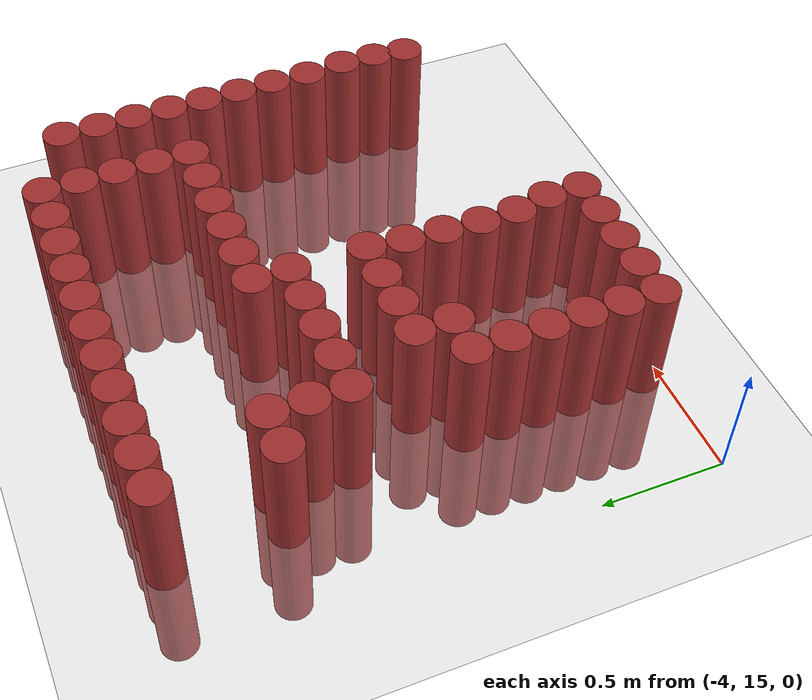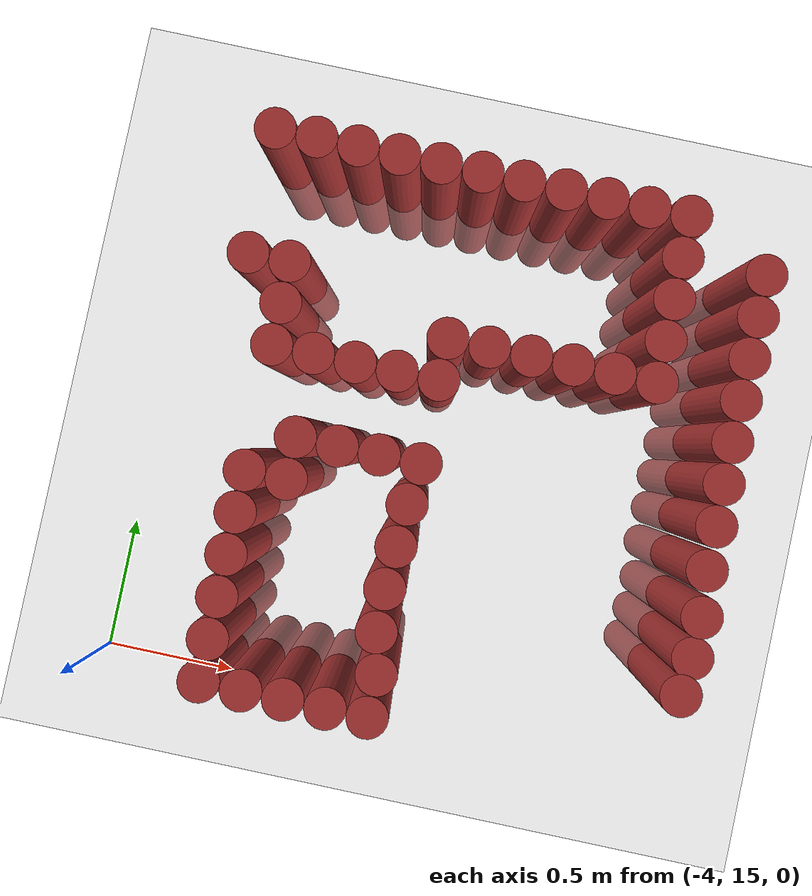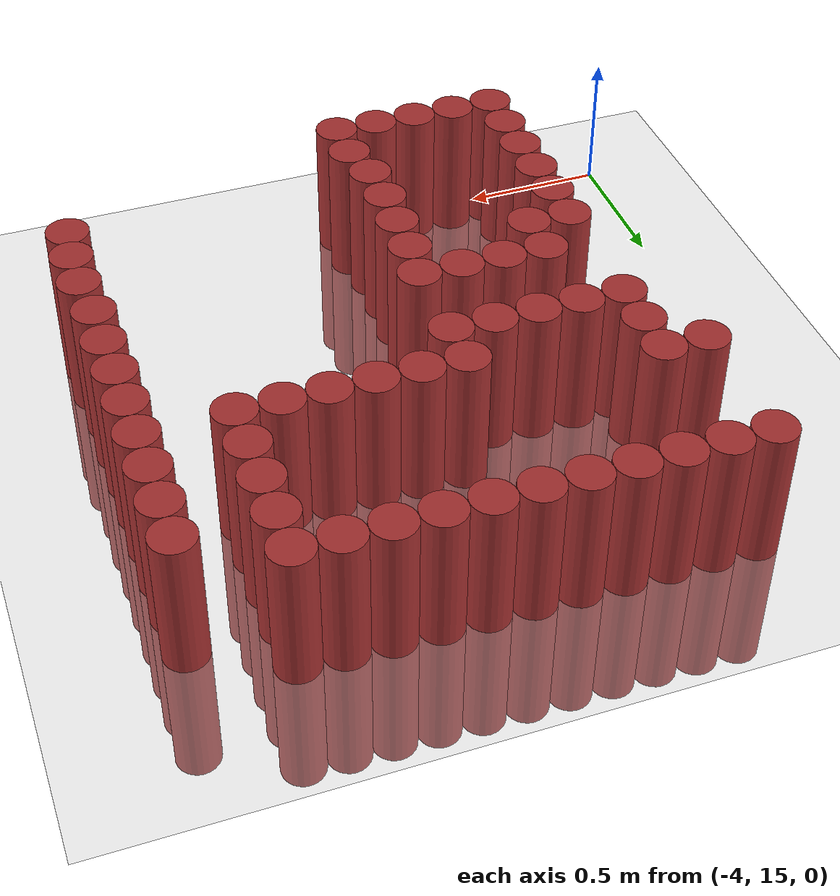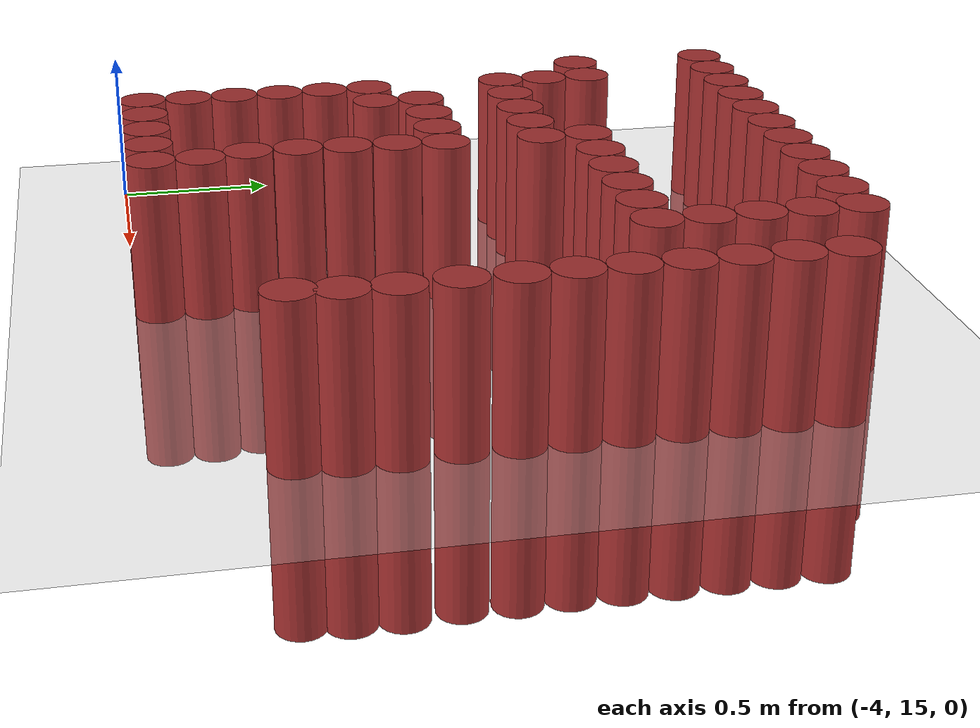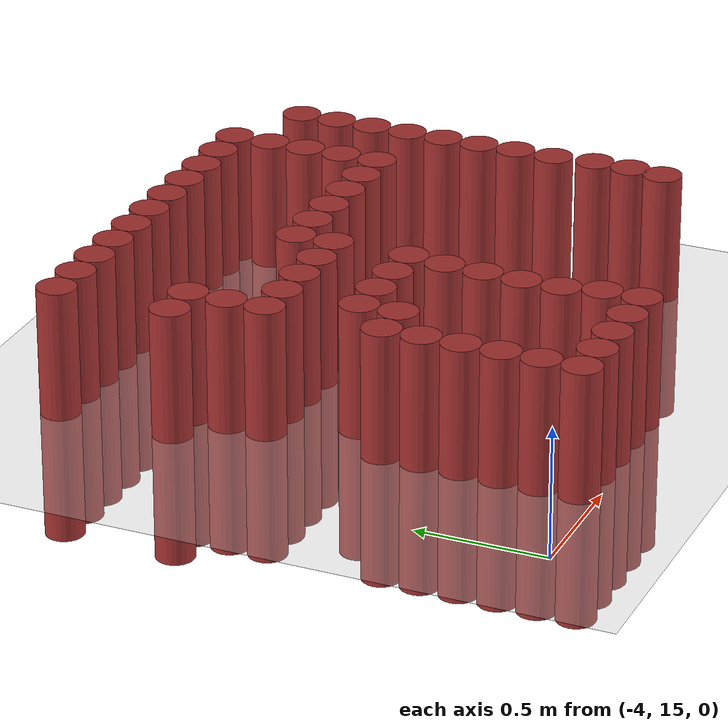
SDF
<sdf version="1.6">
 <world name="default">
  <model name="ground_plane">
   <static>1</static>
   <link name="link">
    <collision name="collision">
     <geometry><plane><normal>0 0 1</normal><size>100 100</size></plane></geometry>
     <surface><friction><ode><mu>100</mu><mu2>50</mu2></ode></friction></surface>
    </collision>
    <visual name="visual">
     <cast_shadows>0</cast_shadows>
     <geometry><plane><normal>0 0 1</normal><size>100 100</size></plane></geometry>
     <material>
      <script><uri>file://media/materials/scripts/gazebo.material</uri><name>Gazebo/Grey</name></script>
     </material>
    </visual>
   </link>
  </model>
  <model name="unit_cylinder_1180">
   <static>1</static>
   <pose>-3.675 16.575 0 0 -0 0</pose>
   <link name="link">
    <inertial>
     <mass>1</mass>
     <inertia><ixx>0.145833</ixx><ixy>0</ixy><ixz>0</ixz><iyy>0.145833</iyy><iyz>0</iyz><izz>0.125</izz></inertia>
    </inertial>
    <collision name="collision">
     <geometry><cylinder><radius>0.075</radius><length>1</length></cylinder></geometry>
    </collision>
    <visual name="visual">
     <geometry><cylinder><radius>0.075</radius><length>1</length></cylinder></geometry>
     <material><ambient>0.648 0.192 0.192 1</ambient><diffuse>0.648 0.192 0.192 1</diffuse></material>
     <material>
      <script><name>Gazebo/Grey</name><uri>file://media/materials/scripts/gazebo.material</uri></script>
     </material>
    </visual>
   </link>
  </model>
  <model name="unit_cylinder_1181">
   <static>1</static>
   <pose>-3.675 17.025 0 0 -0 0</pose>
   <link name="link">
    <inertial>
     <mass>1</mass>
     <inertia><ixx>0.145833</ixx><ixy>0</ixy><ixz>0</ixz><iyy>0.145833</iyy><iyz>0</iyz><izz>0.125</izz></inertia>
    </inertial>
    <collision name="collision">
     <geometry><cylinder><radius>0.075</radius><length>1</length></cylinder></geometry>
    </collision>
    <visual name="visual">
     <geometry><cylinder><radius>0.075</radius><length>1</length></cylinder></geometry>
     <material><ambient>0.648 0.192 0.192 1</ambient><diffuse>0.648 0.192 0.192 1</diffuse></material>
     <material>
      <script><name>Gazebo/Grey</name><uri>file://media/materials/scripts/gazebo.material</uri></script>
     </material>
    </visual>
   </link>
  </model>
  <model name="unit_cylinder_1197">
   <static>1</static>
   <pose>-3.525 15.075 0 0 -0 0</pose>
   <link name="link">
    <inertial>
     <mass>1</mass>
     <inertia><ixx>0.145833</ixx><ixy>0</ixy><ixz>0</ixz><iyy>0.145833</iyy><iyz>0</iyz><izz>0.125</izz></inertia>
    </inertial>
    <collision name="collision">
     <geometry><cylinder><radius>0.075</radius><length>1</length></cylinder></geometry>
    </collision>
    <visual name="visual">
     <geometry><cylinder><radius>0.075</radius><length>1</length></cylinder></geometry>
     <material><ambient>0.648 0.192 0.192 1</ambient><diffuse>0.648 0.192 0.192 1</diffuse></material>
     <material>
      <script><name>Gazebo/Grey</name><uri>file://media/materials/scripts/gazebo.material</uri></script>
     </material>
    </visual>
   </link>
  </model>
  <model name="unit_cylinder_1198">
   <static>1</static>
   <pose>-3.525 15.225 0 0 -0 0</pose>
   <link name="link">
    <inertial>
     <mass>1</mass>
     <inertia><ixx>0.145833</ixx><ixy>0</ixy><ixz>0</ixz><iyy>0.145833</iyy><iyz>0</iyz><izz>0.125</izz></inertia>
    </inertial>
    <collision name="collision">
     <geometry><cylinder><radius>0.075</radius><length>1</length></cylinder></geometry>
    </collision>
    <visual name="visual">
     <geometry><cylinder><radius>0.075</radius><length>1</length></cylinder></geometry>
     <material><ambient>0.648 0.192 0.192 1</ambient><diffuse>0.648 0.192 0.192 1</diffuse></material>
     <material>
      <script><name>Gazebo/Grey</name><uri>file://media/materials/scripts/gazebo.material</uri></script>
     </material>
    </visual>
   </link>
  </model>
  <model name="unit_cylinder_1199">
   <static>1</static>
   <pose>-3.525 15.375 0 0 -0 0</pose>
   <link name="link">
    <inertial>
     <mass>1</mass>
     <inertia><ixx>0.145833</ixx><ixy>0</ixy><ixz>0</ixz><iyy>0.145833</iyy><iyz>0</iyz><izz>0.125</izz></inertia>
    </inertial>
    <collision name="collision">
     <geometry><cylinder><radius>0.075</radius><length>1</length></cylinder></geometry>
    </collision>
    <visual name="visual">
     <geometry><cylinder><radius>0.075</radius><length>1</length></cylinder></geometry>
     <material><ambient>0.648 0.192 0.192 1</ambient><diffuse>0.648 0.192 0.192 1</diffuse></material>
     <material>
      <script><name>Gazebo/Grey</name><uri>file://media/materials/scripts/gazebo.material</uri></script>
     </material>
    </visual>
   </link>
  </model>
  <model name="unit_cylinder_1200">
   <static>1</static>
   <pose>-3.525 15.525 0 0 -0 0</pose>
   <link name="link">
    <inertial>
     <mass>1</mass>
     <inertia><ixx>0.145833</ixx><ixy>0</ixy><ixz>0</ixz><iyy>0.145833</iyy><iyz>0</iyz><izz>0.125</izz></inertia>
    </inertial>
    <collision name="collision">
     <geometry><cylinder><radius>0.075</radius><length>1</length></cylinder></geometry>
    </collision>
    <visual name="visual">
     <geometry><cylinder><radius>0.075</radius><length>1</length></cylinder></geometry>
     <material><ambient>0.648 0.192 0.192 1</ambient><diffuse>0.648 0.192 0.192 1</diffuse></material>
     <material>
      <script><name>Gazebo/Grey</name><uri>file://media/materials/scripts/gazebo.material</uri></script>
     </material>
    </visual>
   </link>
  </model>
  <model name="unit_cylinder_1201">
   <static>1</static>
   <pose>-3.525 15.675 0 0 -0 0</pose>
   <link name="link">
    <inertial>
     <mass>1</mass>
     <inertia><ixx>0.145833</ixx><ixy>0</ixy><ixz>0</ixz><iyy>0.145833</iyy><iyz>0</iyz><izz>0.125</izz></inertia>
    </inertial>
    <collision name="collision">
     <geometry><cylinder><radius>0.075</radius><length>1</length></cylinder></geometry>
    </collision>
    <visual name="visual">
     <geometry><cylinder><radius>0.075</radius><length>1</length></cylinder></geometry>
     <material><ambient>0.648 0.192 0.192 1</ambient><diffuse>0.648 0.192 0.192 1</diffuse></material>
     <material>
      <script><name>Gazebo/Grey</name><uri>file://media/materials/scripts/gazebo.material</uri></script>
     </material>
    </visual>
   </link>
  </model>
  <model name="unit_cylinder_1202">
   <static>1</static>
   <pose>-3.525 15.825 0 0 -0 0</pose>
   <link name="link">
    <inertial>
     <mass>1</mass>
     <inertia><ixx>0.145833</ixx><ixy>0</ixy><ixz>0</ixz><iyy>0.145833</iyy><iyz>0</iyz><izz>0.125</izz></inertia>
    </inertial>
    <collision name="collision">
     <geometry><cylinder><radius>0.075</radius><length>1</length></cylinder></geometry>
    </collision>
    <visual name="visual">
     <geometry><cylinder><radius>0.075</radius><length>1</length></cylinder></geometry>
     <material><ambient>0.648 0.192 0.192 1</ambient><diffuse>0.648 0.192 0.192 1</diffuse></material>
     <material>
      <script><name>Gazebo/Grey</name><uri>file://media/materials/scripts/gazebo.material</uri></script>
     </material>
    </visual>
   </link>
  </model>
  <model name="unit_cylinder_1203">
   <static>1</static>
   <pose>-3.525 16.275 0 0 -0 0</pose>
   <link name="link">
    <inertial>
     <mass>1</mass>
     <inertia><ixx>0.145833</ixx><ixy>0</ixy><ixz>0</ixz><iyy>0.145833</iyy><iyz>0</iyz><izz>0.125</izz></inertia>
    </inertial>
    <collision name="collision">
     <geometry><cylinder><radius>0.075</radius><length>1</length></cylinder></geometry>
    </collision>
    <visual name="visual">
     <geometry><cylinder><radius>0.075</radius><length>1</length></cylinder></geometry>
     <material><ambient>0.648 0.192 0.192 1</ambient><diffuse>0.648 0.192 0.192 1</diffuse></material>
     <material>
      <script><name>Gazebo/Grey</name><uri>file://media/materials/scripts/gazebo.material</uri></script>
     </material>
    </visual>
   </link>
  </model>
  <model name="unit_cylinder_1204">
   <static>1</static>
   <pose>-3.525 16.425 0 0 -0 0</pose>
   <link name="link">
    <inertial>
     <mass>1</mass>
     <inertia><ixx>0.145833</ixx><ixy>0</ixy><ixz>0</ixz><iyy>0.145833</iyy><iyz>0</iyz><izz>0.125</izz></inertia>
    </inertial>
    <collision name="collision">
     <geometry><cylinder><radius>0.075</radius><length>1</length></cylinder></geometry>
    </collision>
    <visual name="visual">
     <geometry><cylinder><radius>0.075</radius><length>1</length></cylinder></geometry>
     <material><ambient>0.648 0.192 0.192 1</ambient><diffuse>0.648 0.192 0.192 1</diffuse></material>
     <material>
      <script><name>Gazebo/Grey</name><uri>file://media/materials/scripts/gazebo.material</uri></script>
     </material>
    </visual>
   </link>
  </model>
  <model name="unit_cylinder_1205">
   <static>1</static>
   <pose>-3.525 16.575 0 0 -0 0</pose>
   <link name="link">
    <inertial>
     <mass>1</mass>
     <inertia><ixx>0.145833</ixx><ixy>0</ixy><ixz>0</ixz><iyy>0.145833</iyy><iyz>0</iyz><izz>0.125</izz></inertia>
    </inertial>
    <collision name="collision">
     <geometry><cylinder><radius>0.075</radius><length>1</length></cylinder></geometry>
    </collision>
    <visual name="visual">
     <geometry><cylinder><radius>0.075</radius><length>1</length></cylinder></geometry>
     <material><ambient>0.648 0.192 0.192 1</ambient><diffuse>0.648 0.192 0.192 1</diffuse></material>
     <material>
      <script><name>Gazebo/Grey</name><uri>file://media/materials/scripts/gazebo.material</uri></script>
     </material>
    </visual>
   </link>
  </model>
  <model name="unit_cylinder_1206">
   <static>1</static>
   <pose>-3.525 17.025 0 0 -0 0</pose>
   <link name="link">
    <inertial>
     <mass>1</mass>
     <inertia><ixx>0.145833</ixx><ixy>0</ixy><ixz>0</ixz><iyy>0.145833</iyy><iyz>0</iyz><izz>0.125</izz></inertia>
    </inertial>
    <collision name="collision">
     <geometry><cylinder><radius>0.075</radius><length>1</length></cylinder></geometry>
    </collision>
    <visual name="visual">
     <geometry><cylinder><radius>0.075</radius><length>1</length></cylinder></geometry>
     <material><ambient>0.648 0.192 0.192 1</ambient><diffuse>0.648 0.192 0.192 1</diffuse></material>
     <material>
      <script><name>Gazebo/Grey</name><uri>file://media/materials/scripts/gazebo.material</uri></script>
     </material>
    </visual>
   </link>
  </model>
  <model name="unit_cylinder_1223">
   <static>1</static>
   <pose>-3.375 15.075 0 0 -0 0</pose>
   <link name="link">
    <inertial>
     <mass>1</mass>
     <inertia><ixx>0.145833</ixx><ixy>0</ixy><ixz>0</ixz><iyy>0.145833</iyy><iyz>0</iyz><izz>0.125</izz></inertia>
    </inertial>
    <collision name="collision">
     <geometry><cylinder><radius>0.075</radius><length>1</length></cylinder></geometry>
    </collision>
    <visual name="visual">
     <geometry><cylinder><radius>0.075</radius><length>1</length></cylinder></geometry>
     <material><ambient>0.648 0.192 0.192 1</ambient><diffuse>0.648 0.192 0.192 1</diffuse></material>
     <material>
      <script><name>Gazebo/Grey</name><uri>file://media/materials/scripts/gazebo.material</uri></script>
     </material>
    </visual>
   </link>
  </model>
  <model name="unit_cylinder_1224">
   <static>1</static>
   <pose>-3.375 15.825 0 0 -0 0</pose>
   <link name="link">
    <inertial>
     <mass>1</mass>
     <inertia><ixx>0.145833</ixx><ixy>0</ixy><ixz>0</ixz><iyy>0.145833</iyy><iyz>0</iyz><izz>0.125</izz></inertia>
    </inertial>
    <collision name="collision">
     <geometry><cylinder><radius>0.075</radius><length>1</length></cylinder></geometry>
    </collision>
    <visual name="visual">
     <geometry><cylinder><radius>0.075</radius><length>1</length></cylinder></geometry>
     <material><ambient>0.648 0.192 0.192 1</ambient><diffuse>0.648 0.192 0.192 1</diffuse></material>
     <material>
      <script><name>Gazebo/Grey</name><uri>file://media/materials/scripts/gazebo.material</uri></script>
     </material>
    </visual>
   </link>
  </model>
  <model name="unit_cylinder_1225">
   <static>1</static>
   <pose>-3.375 15.975 0 0 -0 0</pose>
   <link name="link">
    <inertial>
     <mass>1</mass>
     <inertia><ixx>0.145833</ixx><ixy>0</ixy><ixz>0</ixz><iyy>0.145833</iyy><iyz>0</iyz><izz>0.125</izz></inertia>
    </inertial>
    <collision name="collision">
     <geometry><cylinder><radius>0.075</radius><length>1</length></cylinder></geometry>
    </collision>
    <visual name="visual">
     <geometry><cylinder><radius>0.075</radius><length>1</length></cylinder></geometry>
     <material><ambient>0.648 0.192 0.192 1</ambient><diffuse>0.648 0.192 0.192 1</diffuse></material>
     <material>
      <script><name>Gazebo/Grey</name><uri>file://media/materials/scripts/gazebo.material</uri></script>
     </material>
    </visual>
   </link>
  </model>
  <model name="unit_cylinder_1226">
   <static>1</static>
   <pose>-3.375 16.275 0 0 -0 0</pose>
   <link name="link">
    <inertial>
     <mass>1</mass>
     <inertia><ixx>0.145833</ixx><ixy>0</ixy><ixz>0</ixz><iyy>0.145833</iyy><iyz>0</iyz><izz>0.125</izz></inertia>
    </inertial>
    <collision name="collision">
     <geometry><cylinder><radius>0.075</radius><length>1</length></cylinder></geometry>
    </collision>
    <visual name="visual">
     <geometry><cylinder><radius>0.075</radius><length>1</length></cylinder></geometry>
     <material><ambient>0.648 0.192 0.192 1</ambient><diffuse>0.648 0.192 0.192 1</diffuse></material>
     <material>
      <script><name>Gazebo/Grey</name><uri>file://media/materials/scripts/gazebo.material</uri></script>
     </material>
    </visual>
   </link>
  </model>
  <model name="unit_cylinder_1227">
   <static>1</static>
   <pose>-3.375 17.025 0 0 -0 0</pose>
   <link name="link">
    <inertial>
     <mass>1</mass>
     <inertia><ixx>0.145833</ixx><ixy>0</ixy><ixz>0</ixz><iyy>0.145833</iyy><iyz>0</iyz><izz>0.125</izz></inertia>
    </inertial>
    <collision name="collision">
     <geometry><cylinder><radius>0.075</radius><length>1</length></cylinder></geometry>
    </collision>
    <visual name="visual">
     <geometry><cylinder><radius>0.075</radius><length>1</length></cylinder></geometry>
     <material><ambient>0.648 0.192 0.192 1</ambient><diffuse>0.648 0.192 0.192 1</diffuse></material>
     <material>
      <script><name>Gazebo/Grey</name><uri>file://media/materials/scripts/gazebo.material</uri></script>
     </material>
    </visual>
   </link>
  </model>
  <model name="unit_cylinder_1242">
   <static>1</static>
   <pose>-3.225 15.075 0 0 -0 0</pose>
   <link name="link">
    <inertial>
     <mass>1</mass>
     <inertia><ixx>0.145833</ixx><ixy>0</ixy><ixz>0</ixz><iyy>0.145833</iyy><iyz>0</iyz><izz>0.125</izz></inertia>
    </inertial>
    <collision name="collision">
     <geometry><cylinder><radius>0.075</radius><length>1</length></cylinder></geometry>
    </collision>
    <visual name="visual">
     <geometry><cylinder><radius>0.075</radius><length>1</length></cylinder></geometry>
     <material><ambient>0.648 0.192 0.192 1</ambient><diffuse>0.648 0.192 0.192 1</diffuse></material>
     <material>
      <script><name>Gazebo/Grey</name><uri>file://media/materials/scripts/gazebo.material</uri></script>
     </material>
    </visual>
   </link>
  </model>
  <model name="unit_cylinder_1243">
   <static>1</static>
   <pose>-3.225 15.975 0 0 -0 0</pose>
   <link name="link">
    <inertial>
     <mass>1</mass>
     <inertia><ixx>0.145833</ixx><ixy>0</ixy><ixz>0</ixz><iyy>0.145833</iyy><iyz>0</iyz><izz>0.125</izz></inertia>
    </inertial>
    <collision name="collision">
     <geometry><cylinder><radius>0.075</radius><length>1</length></cylinder></geometry>
    </collision>
    <visual name="visual">
     <geometry><cylinder><radius>0.075</radius><length>1</length></cylinder></geometry>
     <material><ambient>0.648 0.192 0.192 1</ambient><diffuse>0.648 0.192 0.192 1</diffuse></material>
     <material>
      <script><name>Gazebo/Grey</name><uri>file://media/materials/scripts/gazebo.material</uri></script>
     </material>
    </visual>
   </link>
  </model>
  <model name="unit_cylinder_1244">
   <static>1</static>
   <pose>-3.225 16.275 0 0 -0 0</pose>
   <link name="link">
    <inertial>
     <mass>1</mass>
     <inertia><ixx>0.145833</ixx><ixy>0</ixy><ixz>0</ixz><iyy>0.145833</iyy><iyz>0</iyz><izz>0.125</izz></inertia>
    </inertial>
    <collision name="collision">
     <geometry><cylinder><radius>0.075</radius><length>1</length></cylinder></geometry>
    </collision>
    <visual name="visual">
     <geometry><cylinder><radius>0.075</radius><length>1</length></cylinder></geometry>
     <material><ambient>0.648 0.192 0.192 1</ambient><diffuse>0.648 0.192 0.192 1</diffuse></material>
     <material>
      <script><name>Gazebo/Grey</name><uri>file://media/materials/scripts/gazebo.material</uri></script>
     </material>
    </visual>
   </link>
  </model>
  <model name="unit_cylinder_1245">
   <static>1</static>
   <pose>-3.225 17.025 0 0 -0 0</pose>
   <link name="link">
    <inertial>
     <mass>1</mass>
     <inertia><ixx>0.145833</ixx><ixy>0</ixy><ixz>0</ixz><iyy>0.145833</iyy><iyz>0</iyz><izz>0.125</izz></inertia>
    </inertial>
    <collision name="collision">
     <geometry><cylinder><radius>0.075</radius><length>1</length></cylinder></geometry>
    </collision>
    <visual name="visual">
     <geometry><cylinder><radius>0.075</radius><length>1</length></cylinder></geometry>
     <material><ambient>0.648 0.192 0.192 1</ambient><diffuse>0.648 0.192 0.192 1</diffuse></material>
     <material>
      <script><name>Gazebo/Grey</name><uri>file://media/materials/scripts/gazebo.material</uri></script>
     </material>
    </visual>
   </link>
  </model>
  <model name="unit_cylinder_1255">
   <static>1</static>
   <pose>-3.075 15.075 0 0 -0 0</pose>
   <link name="link">
    <inertial>
     <mass>1</mass>
     <inertia><ixx>0.145833</ixx><ixy>0</ixy><ixz>0</ixz><iyy>0.145833</iyy><iyz>0</iyz><izz>0.125</izz></inertia>
    </inertial>
    <collision name="collision">
     <geometry><cylinder><radius>0.075</radius><length>1</length></cylinder></geometry>
    </collision>
    <visual name="visual">
     <geometry><cylinder><radius>0.075</radius><length>1</length></cylinder></geometry>
     <material><ambient>0.648 0.192 0.192 1</ambient><diffuse>0.648 0.192 0.192 1</diffuse></material>
     <material>
      <script><name>Gazebo/Grey</name><uri>file://media/materials/scripts/gazebo.material</uri></script>
     </material>
    </visual>
   </link>
  </model>
  <model name="unit_cylinder_1256">
   <static>1</static>
   <pose>-3.075 15.975 0 0 -0 0</pose>
   <link name="link">
    <inertial>
     <mass>1</mass>
     <inertia><ixx>0.145833</ixx><ixy>0</ixy><ixz>0</ixz><iyy>0.145833</iyy><iyz>0</iyz><izz>0.125</izz></inertia>
    </inertial>
    <collision name="collision">
     <geometry><cylinder><radius>0.075</radius><length>1</length></cylinder></geometry>
    </collision>
    <visual name="visual">
     <geometry><cylinder><radius>0.075</radius><length>1</length></cylinder></geometry>
     <material><ambient>0.648 0.192 0.192 1</ambient><diffuse>0.648 0.192 0.192 1</diffuse></material>
     <material>
      <script><name>Gazebo/Grey</name><uri>file://media/materials/scripts/gazebo.material</uri></script>
     </material>
    </visual>
   </link>
  </model>
  <model name="unit_cylinder_1257">
   <static>1</static>
   <pose>-3.075 16.275 0 0 -0 0</pose>
   <link name="link">
    <inertial>
     <mass>1</mass>
     <inertia><ixx>0.145833</ixx><ixy>0</ixy><ixz>0</ixz><iyy>0.145833</iyy><iyz>0</iyz><izz>0.125</izz></inertia>
    </inertial>
    <collision name="collision">
     <geometry><cylinder><radius>0.075</radius><length>1</length></cylinder></geometry>
    </collision>
    <visual name="visual">
     <geometry><cylinder><radius>0.075</radius><length>1</length></cylinder></geometry>
     <material><ambient>0.648 0.192 0.192 1</ambient><diffuse>0.648 0.192 0.192 1</diffuse></material>
     <material>
      <script><name>Gazebo/Grey</name><uri>file://media/materials/scripts/gazebo.material</uri></script>
     </material>
    </visual>
   </link>
  </model>
  <model name="unit_cylinder_1258">
   <static>1</static>
   <pose>-3.075 17.025 0 0 -0 0</pose>
   <link name="link">
    <inertial>
     <mass>1</mass>
     <inertia><ixx>0.145833</ixx><ixy>0</ixy><ixz>0</ixz><iyy>0.145833</iyy><iyz>0</iyz><izz>0.125</izz></inertia>
    </inertial>
    <collision name="collision">
     <geometry><cylinder><radius>0.075</radius><length>1</length></cylinder></geometry>
    </collision>
    <visual name="visual">
     <geometry><cylinder><radius>0.075</radius><length>1</length></cylinder></geometry>
     <material><ambient>0.648 0.192 0.192 1</ambient><diffuse>0.648 0.192 0.192 1</diffuse></material>
     <material>
      <script><name>Gazebo/Grey</name><uri>file://media/materials/scripts/gazebo.material</uri></script>
     </material>
    </visual>
   </link>
  </model>
  <model name="unit_cylinder_1263">
   <static>1</static>
   <pose>-2.925 15.075 0 0 -0 0</pose>
   <link name="link">
    <inertial>
     <mass>1</mass>
     <inertia><ixx>0.145833</ixx><ixy>0</ixy><ixz>0</ixz><iyy>0.145833</iyy><iyz>0</iyz><izz>0.125</izz></inertia>
    </inertial>
    <collision name="collision">
     <geometry><cylinder><radius>0.075</radius><length>1</length></cylinder></geometry>
    </collision>
    <visual name="visual">
     <geometry><cylinder><radius>0.075</radius><length>1</length></cylinder></geometry>
     <material><ambient>0.648 0.192 0.192 1</ambient><diffuse>0.648 0.192 0.192 1</diffuse></material>
     <material>
      <script><name>Gazebo/Grey</name><uri>file://media/materials/scripts/gazebo.material</uri></script>
     </material>
    </visual>
   </link>
  </model>
  <model name="unit_cylinder_1264">
   <static>1</static>
   <pose>-2.925 15.225 0 0 -0 0</pose>
   <link name="link">
    <inertial>
     <mass>1</mass>
     <inertia><ixx>0.145833</ixx><ixy>0</ixy><ixz>0</ixz><iyy>0.145833</iyy><iyz>0</iyz><izz>0.125</izz></inertia>
    </inertial>
    <collision name="collision">
     <geometry><cylinder><radius>0.075</radius><length>1</length></cylinder></geometry>
    </collision>
    <visual name="visual">
     <geometry><cylinder><radius>0.075</radius><length>1</length></cylinder></geometry>
     <material><ambient>0.648 0.192 0.192 1</ambient><diffuse>0.648 0.192 0.192 1</diffuse></material>
     <material>
      <script><name>Gazebo/Grey</name><uri>file://media/materials/scripts/gazebo.material</uri></script>
     </material>
    </visual>
   </link>
  </model>
  <model name="unit_cylinder_1265">
   <static>1</static>
   <pose>-2.925 15.975 0 0 -0 0</pose>
   <link name="link">
    <inertial>
     <mass>1</mass>
     <inertia><ixx>0.145833</ixx><ixy>0</ixy><ixz>0</ixz><iyy>0.145833</iyy><iyz>0</iyz><izz>0.125</izz></inertia>
    </inertial>
    <collision name="collision">
     <geometry><cylinder><radius>0.075</radius><length>1</length></cylinder></geometry>
    </collision>
    <visual name="visual">
     <geometry><cylinder><radius>0.075</radius><length>1</length></cylinder></geometry>
     <material><ambient>0.648 0.192 0.192 1</ambient><diffuse>0.648 0.192 0.192 1</diffuse></material>
     <material>
      <script><name>Gazebo/Grey</name><uri>file://media/materials/scripts/gazebo.material</uri></script>
     </material>
    </visual>
   </link>
  </model>
  <model name="unit_cylinder_1266">
   <static>1</static>
   <pose>-2.925 16.275 0 0 -0 0</pose>
   <link name="link">
    <inertial>
     <mass>1</mass>
     <inertia><ixx>0.145833</ixx><ixy>0</ixy><ixz>0</ixz><iyy>0.145833</iyy><iyz>0</iyz><izz>0.125</izz></inertia>
    </inertial>
    <collision name="collision">
     <geometry><cylinder><radius>0.075</radius><length>1</length></cylinder></geometry>
    </collision>
    <visual name="visual">
     <geometry><cylinder><radius>0.075</radius><length>1</length></cylinder></geometry>
     <material><ambient>0.648 0.192 0.192 1</ambient><diffuse>0.648 0.192 0.192 1</diffuse></material>
     <material>
      <script><name>Gazebo/Grey</name><uri>file://media/materials/scripts/gazebo.material</uri></script>
     </material>
    </visual>
   </link>
  </model>
  <model name="unit_cylinder_1267">
   <static>1</static>
   <pose>-2.925 16.425 0 0 -0 0</pose>
   <link name="link">
    <inertial>
     <mass>1</mass>
     <inertia><ixx>0.145833</ixx><ixy>0</ixy><ixz>0</ixz><iyy>0.145833</iyy><iyz>0</iyz><izz>0.125</izz></inertia>
    </inertial>
    <collision name="collision">
     <geometry><cylinder><radius>0.075</radius><length>1</length></cylinder></geometry>
    </collision>
    <visual name="visual">
     <geometry><cylinder><radius>0.075</radius><length>1</length></cylinder></geometry>
     <material><ambient>0.648 0.192 0.192 1</ambient><diffuse>0.648 0.192 0.192 1</diffuse></material>
     <material>
      <script><name>Gazebo/Grey</name><uri>file://media/materials/scripts/gazebo.material</uri></script>
     </material>
    </visual>
   </link>
  </model>
  <model name="unit_cylinder_1268">
   <static>1</static>
   <pose>-2.925 17.025 0 0 -0 0</pose>
   <link name="link">
    <inertial>
     <mass>1</mass>
     <inertia><ixx>0.145833</ixx><ixy>0</ixy><ixz>0</ixz><iyy>0.145833</iyy><iyz>0</iyz><izz>0.125</izz></inertia>
    </inertial>
    <collision name="collision">
     <geometry><cylinder><radius>0.075</radius><length>1</length></cylinder></geometry>
    </collision>
    <visual name="visual">
     <geometry><cylinder><radius>0.075</radius><length>1</length></cylinder></geometry>
     <material><ambient>0.648 0.192 0.192 1</ambient><diffuse>0.648 0.192 0.192 1</diffuse></material>
     <material>
      <script><name>Gazebo/Grey</name><uri>file://media/materials/scripts/gazebo.material</uri></script>
     </material>
    </visual>
   </link>
  </model>
  <model name="unit_cylinder_1277">
   <static>1</static>
   <pose>-2.775 16.425 0 0 -0 0</pose>
   <link name="link">
    <inertial>
     <mass>1</mass>
     <inertia><ixx>0.145833</ixx><ixy>0</ixy><ixz>0</ixz><iyy>0.145833</iyy><iyz>0</iyz><izz>0.125</izz></inertia>
    </inertial>
    <collision name="collision">
     <geometry><cylinder><radius>0.075</radius><length>1</length></cylinder></geometry>
    </collision>
    <visual name="visual">
     <geometry><cylinder><radius>0.075</radius><length>1</length></cylinder></geometry>
     <material><ambient>0.648 0.192 0.192 1</ambient><diffuse>0.648 0.192 0.192 1</diffuse></material>
     <material>
      <script><name>Gazebo/Grey</name><uri>file://media/materials/scripts/gazebo.material</uri></script>
     </material>
    </visual>
   </link>
  </model>
  <model name="unit_cylinder_1278">
   <static>1</static>
   <pose>-2.775 17.025 0 0 -0 0</pose>
   <link name="link">
    <inertial>
     <mass>1</mass>
     <inertia><ixx>0.145833</ixx><ixy>0</ixy><ixz>0</ixz><iyy>0.145833</iyy><iyz>0</iyz><izz>0.125</izz></inertia>
    </inertial>
    <collision name="collision">
     <geometry><cylinder><radius>0.075</radius><length>1</length></cylinder></geometry>
    </collision>
    <visual name="visual">
     <geometry><cylinder><radius>0.075</radius><length>1</length></cylinder></geometry>
     <material><ambient>0.648 0.192 0.192 1</ambient><diffuse>0.648 0.192 0.192 1</diffuse></material>
     <material>
      <script><name>Gazebo/Grey</name><uri>file://media/materials/scripts/gazebo.material</uri></script>
     </material>
    </visual>
   </link>
  </model>
  <model name="unit_cylinder_1285">
   <static>1</static>
   <pose>-2.625 16.425 0 0 -0 0</pose>
   <link name="link">
    <inertial>
     <mass>1</mass>
     <inertia><ixx>0.145833</ixx><ixy>0</ixy><ixz>0</ixz><iyy>0.145833</iyy><iyz>0</iyz><izz>0.125</izz></inertia>
    </inertial>
    <collision name="collision">
     <geometry><cylinder><radius>0.075</radius><length>1</length></cylinder></geometry>
    </collision>
    <visual name="visual">
     <geometry><cylinder><radius>0.075</radius><length>1</length></cylinder></geometry>
     <material><ambient>0.648 0.192 0.192 1</ambient><diffuse>0.648 0.192 0.192 1</diffuse></material>
     <material>
      <script><name>Gazebo/Grey</name><uri>file://media/materials/scripts/gazebo.material</uri></script>
     </material>
    </visual>
   </link>
  </model>
  <model name="unit_cylinder_1286">
   <static>1</static>
   <pose>-2.625 17.025 0 0 -0 0</pose>
   <link name="link">
    <inertial>
     <mass>1</mass>
     <inertia><ixx>0.145833</ixx><ixy>0</ixy><ixz>0</ixz><iyy>0.145833</iyy><iyz>0</iyz><izz>0.125</izz></inertia>
    </inertial>
    <collision name="collision">
     <geometry><cylinder><radius>0.075</radius><length>1</length></cylinder></geometry>
    </collision>
    <visual name="visual">
     <geometry><cylinder><radius>0.075</radius><length>1</length></cylinder></geometry>
     <material><ambient>0.648 0.192 0.192 1</ambient><diffuse>0.648 0.192 0.192 1</diffuse></material>
     <material>
      <script><name>Gazebo/Grey</name><uri>file://media/materials/scripts/gazebo.material</uri></script>
     </material>
    </visual>
   </link>
  </model>
  <model name="unit_cylinder_1293">
   <static>1</static>
   <pose>-2.475 16.425 0 0 -0 0</pose>
   <link name="link">
    <inertial>
     <mass>1</mass>
     <inertia><ixx>0.145833</ixx><ixy>0</ixy><ixz>0</ixz><iyy>0.145833</iyy><iyz>0</iyz><izz>0.125</izz></inertia>
    </inertial>
    <collision name="collision">
     <geometry><cylinder><radius>0.075</radius><length>1</length></cylinder></geometry>
    </collision>
    <visual name="visual">
     <geometry><cylinder><radius>0.075</radius><length>1</length></cylinder></geometry>
     <material><ambient>0.648 0.192 0.192 1</ambient><diffuse>0.648 0.192 0.192 1</diffuse></material>
     <material>
      <script><name>Gazebo/Grey</name><uri>file://media/materials/scripts/gazebo.material</uri></script>
     </material>
    </visual>
   </link>
  </model>
  <model name="unit_cylinder_1294">
   <static>1</static>
   <pose>-2.475 17.025 0 0 -0 0</pose>
   <link name="link">
    <inertial>
     <mass>1</mass>
     <inertia><ixx>0.145833</ixx><ixy>0</ixy><ixz>0</ixz><iyy>0.145833</iyy><iyz>0</iyz><izz>0.125</izz></inertia>
    </inertial>
    <collision name="collision">
     <geometry><cylinder><radius>0.075</radius><length>1</length></cylinder></geometry>
    </collision>
    <visual name="visual">
     <geometry><cylinder><radius>0.075</radius><length>1</length></cylinder></geometry>
     <material><ambient>0.648 0.192 0.192 1</ambient><diffuse>0.648 0.192 0.192 1</diffuse></material>
     <material>
      <script><name>Gazebo/Grey</name><uri>file://media/materials/scripts/gazebo.material</uri></script>
     </material>
    </visual>
   </link>
  </model>
  <model name="unit_cylinder_1310">
   <static>1</static>
   <pose>-2.325 16.425 0 0 -0 0</pose>
   <link name="link">
    <inertial>
     <mass>1</mass>
     <inertia><ixx>0.145833</ixx><ixy>0</ixy><ixz>0</ixz><iyy>0.145833</iyy><iyz>0</iyz><izz>0.125</izz></inertia>
    </inertial>
    <collision name="collision">
     <geometry><cylinder><radius>0.075</radius><length>1</length></cylinder></geometry>
    </collision>
    <visual name="visual">
     <geometry><cylinder><radius>0.075</radius><length>1</length></cylinder></geometry>
     <material><ambient>0.648 0.192 0.192 1</ambient><diffuse>0.648 0.192 0.192 1</diffuse></material>
     <material>
      <script><name>Gazebo/Grey</name><uri>file://media/materials/scripts/gazebo.material</uri></script>
     </material>
    </visual>
   </link>
  </model>
  <model name="unit_cylinder_1311">
   <static>1</static>
   <pose>-2.325 17.025 0 0 -0 0</pose>
   <link name="link">
    <inertial>
     <mass>1</mass>
     <inertia><ixx>0.145833</ixx><ixy>0</ixy><ixz>0</ixz><iyy>0.145833</iyy><iyz>0</iyz><izz>0.125</izz></inertia>
    </inertial>
    <collision name="collision">
     <geometry><cylinder><radius>0.075</radius><length>1</length></cylinder></geometry>
    </collision>
    <visual name="visual">
     <geometry><cylinder><radius>0.075</radius><length>1</length></cylinder></geometry>
     <material><ambient>0.648 0.192 0.192 1</ambient><diffuse>0.648 0.192 0.192 1</diffuse></material>
     <material>
      <script><name>Gazebo/Grey</name><uri>file://media/materials/scripts/gazebo.material</uri></script>
     </material>
    </visual>
   </link>
  </model>
  <model name="unit_cylinder_1318">
   <static>1</static>
   <pose>-2.175 16.425 0 0 -0 0</pose>
   <link name="link">
    <inertial>
     <mass>1</mass>
     <inertia><ixx>0.145833</ixx><ixy>0</ixy><ixz>0</ixz><iyy>0.145833</iyy><iyz>0</iyz><izz>0.125</izz></inertia>
    </inertial>
    <collision name="collision">
     <geometry><cylinder><radius>0.075</radius><length>1</length></cylinder></geometry>
    </collision>
    <visual name="visual">
     <geometry><cylinder><radius>0.075</radius><length>1</length></cylinder></geometry>
     <material><ambient>0.648 0.192 0.192 1</ambient><diffuse>0.648 0.192 0.192 1</diffuse></material>
     <material>
      <script><name>Gazebo/Grey</name><uri>file://media/materials/scripts/gazebo.material</uri></script>
     </material>
    </visual>
   </link>
  </model>
  <model name="unit_cylinder_1319">
   <static>1</static>
   <pose>-2.175 16.575 0 0 -0 0</pose>
   <link name="link">
    <inertial>
     <mass>1</mass>
     <inertia><ixx>0.145833</ixx><ixy>0</ixy><ixz>0</ixz><iyy>0.145833</iyy><iyz>0</iyz><izz>0.125</izz></inertia>
    </inertial>
    <collision name="collision">
     <geometry><cylinder><radius>0.075</radius><length>1</length></cylinder></geometry>
    </collision>
    <visual name="visual">
     <geometry><cylinder><radius>0.075</radius><length>1</length></cylinder></geometry>
     <material><ambient>0.648 0.192 0.192 1</ambient><diffuse>0.648 0.192 0.192 1</diffuse></material>
     <material>
      <script><name>Gazebo/Grey</name><uri>file://media/materials/scripts/gazebo.material</uri></script>
     </material>
    </visual>
   </link>
  </model>
  <model name="unit_cylinder_1320">
   <static>1</static>
   <pose>-2.175 16.725 0 0 -0 0</pose>
   <link name="link">
    <inertial>
     <mass>1</mass>
     <inertia><ixx>0.145833</ixx><ixy>0</ixy><ixz>0</ixz><iyy>0.145833</iyy><iyz>0</iyz><izz>0.125</izz></inertia>
    </inertial>
    <collision name="collision">
     <geometry><cylinder><radius>0.075</radius><length>1</length></cylinder></geometry>
    </collision>
    <visual name="visual">
     <geometry><cylinder><radius>0.075</radius><length>1</length></cylinder></geometry>
     <material><ambient>0.648 0.192 0.192 1</ambient><diffuse>0.648 0.192 0.192 1</diffuse></material>
     <material>
      <script><name>Gazebo/Grey</name><uri>file://media/materials/scripts/gazebo.material</uri></script>
     </material>
    </visual>
   </link>
  </model>
  <model name="unit_cylinder_1321">
   <static>1</static>
   <pose>-2.175 16.875 0 0 -0 0</pose>
   <link name="link">
    <inertial>
     <mass>1</mass>
     <inertia><ixx>0.145833</ixx><ixy>0</ixy><ixz>0</ixz><iyy>0.145833</iyy><iyz>0</iyz><izz>0.125</izz></inertia>
    </inertial>
    <collision name="collision">
     <geometry><cylinder><radius>0.075</radius><length>1</length></cylinder></geometry>
    </collision>
    <visual name="visual">
     <geometry><cylinder><radius>0.075</radius><length>1</length></cylinder></geometry>
     <material><ambient>0.648 0.192 0.192 1</ambient><diffuse>0.648 0.192 0.192 1</diffuse></material>
     <material>
      <script><name>Gazebo/Grey</name><uri>file://media/materials/scripts/gazebo.material</uri></script>
     </material>
    </visual>
   </link>
  </model>
  <model name="unit_cylinder_1322">
   <static>1</static>
   <pose>-2.175 17.025 0 0 -0 0</pose>
   <link name="link">
    <inertial>
     <mass>1</mass>
     <inertia><ixx>0.145833</ixx><ixy>0</ixy><ixz>0</ixz><iyy>0.145833</iyy><iyz>0</iyz><izz>0.125</izz></inertia>
    </inertial>
    <collision name="collision">
     <geometry><cylinder><radius>0.075</radius><length>1</length></cylinder></geometry>
    </collision>
    <visual name="visual">
     <geometry><cylinder><radius>0.075</radius><length>1</length></cylinder></geometry>
     <material><ambient>0.648 0.192 0.192 1</ambient><diffuse>0.648 0.192 0.192 1</diffuse></material>
     <material>
      <script><name>Gazebo/Grey</name><uri>file://media/materials/scripts/gazebo.material</uri></script>
     </material>
    </visual>
   </link>
  </model>
  <model name="unit_cylinder_1343">
   <static>1</static>
   <pose>-1.875 15.375 0 0 -0 0</pose>
   <link name="link">
    <inertial>
     <mass>1</mass>
     <inertia><ixx>0.145833</ixx><ixy>0</ixy><ixz>0</ixz><iyy>0.145833</iyy><iyz>0</iyz><izz>0.125</izz></inertia>
    </inertial>
    <collision name="collision">
     <geometry><cylinder><radius>0.075</radius><length>1</length></cylinder></geometry>
    </collision>
    <visual name="visual">
     <geometry><cylinder><radius>0.075</radius><length>1</length></cylinder></geometry>
     <material><ambient>0.648 0.192 0.192 1</ambient><diffuse>0.648 0.192 0.192 1</diffuse></material>
     <material>
      <script><name>Gazebo/Grey</name><uri>file://media/materials/scripts/gazebo.material</uri></script>
     </material>
    </visual>
   </link>
  </model>
  <model name="unit_cylinder_1344">
   <static>1</static>
   <pose>-1.875 16.125 0 0 -0 0</pose>
   <link name="link">
    <inertial>
     <mass>1</mass>
     <inertia><ixx>0.145833</ixx><ixy>0</ixy><ixz>0</ixz><iyy>0.145833</iyy><iyz>0</iyz><izz>0.125</izz></inertia>
    </inertial>
    <collision name="collision">
     <geometry><cylinder><radius>0.075</radius><length>1</length></cylinder></geometry>
    </collision>
    <visual name="visual">
     <geometry><cylinder><radius>0.075</radius><length>1</length></cylinder></geometry>
     <material><ambient>0.648 0.192 0.192 1</ambient><diffuse>0.648 0.192 0.192 1</diffuse></material>
     <material>
      <script><name>Gazebo/Grey</name><uri>file://media/materials/scripts/gazebo.material</uri></script>
     </material>
    </visual>
   </link>
  </model>
  <model name="unit_cylinder_1345">
   <static>1</static>
   <pose>-1.875 16.275 0 0 -0 0</pose>
   <link name="link">
    <inertial>
     <mass>1</mass>
     <inertia><ixx>0.145833</ixx><ixy>0</ixy><ixz>0</ixz><iyy>0.145833</iyy><iyz>0</iyz><izz>0.125</izz></inertia>
    </inertial>
    <collision name="collision">
     <geometry><cylinder><radius>0.075</radius><length>1</length></cylinder></geometry>
    </collision>
    <visual name="visual">
     <geometry><cylinder><radius>0.075</radius><length>1</length></cylinder></geometry>
     <material><ambient>0.648 0.192 0.192 1</ambient><diffuse>0.648 0.192 0.192 1</diffuse></material>
     <material>
      <script><name>Gazebo/Grey</name><uri>file://media/materials/scripts/gazebo.material</uri></script>
     </material>
    </visual>
   </link>
  </model>
  <model name="unit_cylinder_1346">
   <static>1</static>
   <pose>-1.875 16.425 0 0 -0 0</pose>
   <link name="link">
    <inertial>
     <mass>1</mass>
     <inertia><ixx>0.145833</ixx><ixy>0</ixy><ixz>0</ixz><iyy>0.145833</iyy><iyz>0</iyz><izz>0.125</izz></inertia>
    </inertial>
    <collision name="collision">
     <geometry><cylinder><radius>0.075</radius><length>1</length></cylinder></geometry>
    </collision>
    <visual name="visual">
     <geometry><cylinder><radius>0.075</radius><length>1</length></cylinder></geometry>
     <material><ambient>0.648 0.192 0.192 1</ambient><diffuse>0.648 0.192 0.192 1</diffuse></material>
     <material>
      <script><name>Gazebo/Grey</name><uri>file://media/materials/scripts/gazebo.material</uri></script>
     </material>
    </visual>
   </link>
  </model>
  <model name="unit_cylinder_1347">
   <static>1</static>
   <pose>-1.875 16.575 0 0 -0 0</pose>
   <link name="link">
    <inertial>
     <mass>1</mass>
     <inertia><ixx>0.145833</ixx><ixy>0</ixy><ixz>0</ixz><iyy>0.145833</iyy><iyz>0</iyz><izz>0.125</izz></inertia>
    </inertial>
    <collision name="collision">
     <geometry><cylinder><radius>0.075</radius><length>1</length></cylinder></geometry>
    </collision>
    <visual name="visual">
     <geometry><cylinder><radius>0.075</radius><length>1</length></cylinder></geometry>
     <material><ambient>0.648 0.192 0.192 1</ambient><diffuse>0.648 0.192 0.192 1</diffuse></material>
     <material>
      <script><name>Gazebo/Grey</name><uri>file://media/materials/scripts/gazebo.material</uri></script>
     </material>
    </visual>
   </link>
  </model>
  <model name="unit_cylinder_1348">
   <static>1</static>
   <pose>-1.875 16.725 0 0 -0 0</pose>
   <link name="link">
    <inertial>
     <mass>1</mass>
     <inertia><ixx>0.145833</ixx><ixy>0</ixy><ixz>0</ixz><iyy>0.145833</iyy><iyz>0</iyz><izz>0.125</izz></inertia>
    </inertial>
    <collision name="collision">
     <geometry><cylinder><radius>0.075</radius><length>1</length></cylinder></geometry>
    </collision>
    <visual name="visual">
     <geometry><cylinder><radius>0.075</radius><length>1</length></cylinder></geometry>
     <material><ambient>0.648 0.192 0.192 1</ambient><diffuse>0.648 0.192 0.192 1</diffuse></material>
     <material>
      <script><name>Gazebo/Grey</name><uri>file://media/materials/scripts/gazebo.material</uri></script>
     </material>
    </visual>
   </link>
  </model>
  <model name="unit_cylinder_1349">
   <static>1</static>
   <pose>-1.875 16.875 0 0 -0 0</pose>
   <link name="link">
    <inertial>
     <mass>1</mass>
     <inertia><ixx>0.145833</ixx><ixy>0</ixy><ixz>0</ixz><iyy>0.145833</iyy><iyz>0</iyz><izz>0.125</izz></inertia>
    </inertial>
    <collision name="collision">
     <geometry><cylinder><radius>0.075</radius><length>1</length></cylinder></geometry>
    </collision>
    <visual name="visual">
     <geometry><cylinder><radius>0.075</radius><length>1</length></cylinder></geometry>
     <material><ambient>0.648 0.192 0.192 1</ambient><diffuse>0.648 0.192 0.192 1</diffuse></material>
     <material>
      <script><name>Gazebo/Grey</name><uri>file://media/materials/scripts/gazebo.material</uri></script>
     </material>
    </visual>
   </link>
  </model>
  <model name="unit_cylinder_1344_clone">
   <static>1</static>
   <pose>-1.87126 15.9752 0 0 -0 0</pose>
   <link name="link">
    <inertial>
     <mass>1</mass>
     <inertia><ixx>0.145833</ixx><ixy>0</ixy><ixz>0</ixz><iyy>0.145833</iyy><iyz>0</iyz><izz>0.125</izz></inertia>
    </inertial>
    <collision name="collision">
     <geometry><cylinder><radius>0.075</radius><length>1</length></cylinder></geometry>
    </collision>
    <visual name="visual">
     <geometry><cylinder><radius>0.075</radius><length>1</length></cylinder></geometry>
     <material><ambient>0.648 0.192 0.192 1</ambient><diffuse>0.648 0.192 0.192 1</diffuse></material>
     <material>
      <script><name>Gazebo/Grey</name><uri>file://media/materials/scripts/gazebo.material</uri></script>
     </material>
    </visual>
   </link>
  </model>
  <model name="unit_cylinder_1344_clone_0">
   <static>1</static>
   <pose>-1.87281 15.8184 0 0 -0 0</pose>
   <link name="link">
    <inertial>
     <mass>1</mass>
     <inertia><ixx>0.145833</ixx><ixy>0</ixy><ixz>0</ixz><iyy>0.145833</iyy><iyz>0</iyz><izz>0.125</izz></inertia>
    </inertial>
    <collision name="collision">
     <geometry><cylinder><radius>0.075</radius><length>1</length></cylinder></geometry>
    </collision>
    <visual name="visual">
     <geometry><cylinder><radius>0.075</radius><length>1</length></cylinder></geometry>
     <material><ambient>0.648 0.192 0.192 1</ambient><diffuse>0.648 0.192 0.192 1</diffuse></material>
     <material>
      <script><name>Gazebo/Grey</name><uri>file://media/materials/scripts/gazebo.material</uri></script>
     </material>
    </visual>
   </link>
  </model>
  <model name="unit_cylinder_1344_clone_1">
   <static>1</static>
   <pose>-1.85784 15.6552 0 0 -0 0</pose>
   <link name="link">
    <inertial>
     <mass>1</mass>
     <inertia><ixx>0.145833</ixx><ixy>0</ixy><ixz>0</ixz><iyy>0.145833</iyy><iyz>0</iyz><izz>0.125</izz></inertia>
    </inertial>
    <collision name="collision">
     <geometry><cylinder><radius>0.075</radius><length>1</length></cylinder></geometry>
    </collision>
    <visual name="visual">
     <geometry><cylinder><radius>0.075</radius><length>1</length></cylinder></geometry>
     <material><ambient>0.648 0.192 0.192 1</ambient><diffuse>0.648 0.192 0.192 1</diffuse></material>
     <material>
      <script><name>Gazebo/Grey</name><uri>file://media/materials/scripts/gazebo.material</uri></script>
     </material>
    </visual>
   </link>
  </model>
  <model name="unit_cylinder_1344_clone_2">
   <static>1</static>
   <pose>-1.86136 15.5103 0 0 -0 0</pose>
   <link name="link">
    <inertial>
     <mass>1</mass>
     <inertia><ixx>0.145833</ixx><ixy>0</ixy><ixz>0</ixz><iyy>0.145833</iyy><iyz>0</iyz><izz>0.125</izz></inertia>
    </inertial>
    <collision name="collision">
     <geometry><cylinder><radius>0.075</radius><length>1</length></cylinder></geometry>
    </collision>
    <visual name="visual">
     <geometry><cylinder><radius>0.075</radius><length>1</length></cylinder></geometry>
     <material><ambient>0.648 0.192 0.192 1</ambient><diffuse>0.648 0.192 0.192 1</diffuse></material>
     <material>
      <script><name>Gazebo/Grey</name><uri>file://media/materials/scripts/gazebo.material</uri></script>
     </material>
    </visual>
   </link>
  </model>
  <model name="unit_cylinder_1265_clone">
   <static>1</static>
   <pose>-2.94352 15.8261 0 0 -0 0</pose>
   <link name="link">
    <inertial>
     <mass>1</mass>
     <inertia><ixx>0.145833</ixx><ixy>0</ixy><ixz>0</ixz><iyy>0.145833</iyy><iyz>0</iyz><izz>0.125</izz></inertia>
    </inertial>
    <collision name="collision">
     <geometry><cylinder><radius>0.075</radius><length>1</length></cylinder></geometry>
    </collision>
    <visual name="visual">
     <geometry><cylinder><radius>0.075</radius><length>1</length></cylinder></geometry>
     <material><ambient>0.648 0.192 0.192 1</ambient><diffuse>0.648 0.192 0.192 1</diffuse></material>
     <material>
      <script><name>Gazebo/Grey</name><uri>file://media/materials/scripts/gazebo.material</uri></script>
     </material>
    </visual>
   </link>
  </model>
  <model name="unit_cylinder_1265_clone_0">
   <static>1</static>
   <pose>-2.951 15.6741 0 0 -0 0</pose>
   <link name="link">
    <inertial>
     <mass>1</mass>
     <inertia><ixx>0.145833</ixx><ixy>0</ixy><ixz>0</ixz><iyy>0.145833</iyy><iyz>0</iyz><izz>0.125</izz></inertia>
    </inertial>
    <collision name="collision">
     <geometry><cylinder><radius>0.075</radius><length>1</length></cylinder></geometry>
    </collision>
    <visual name="visual">
     <geometry><cylinder><radius>0.075</radius><length>1</length></cylinder></geometry>
     <material><ambient>0.648 0.192 0.192 1</ambient><diffuse>0.648 0.192 0.192 1</diffuse></material>
     <material>
      <script><name>Gazebo/Grey</name><uri>file://media/materials/scripts/gazebo.material</uri></script>
     </material>
    </visual>
   </link>
  </model>
  <model name="unit_cylinder_1265_clone_1">
   <static>1</static>
   <pose>-2.95847 15.5224 0 0 -0 0</pose>
   <link name="link">
    <inertial>
     <mass>1</mass>
     <inertia><ixx>0.145833</ixx><ixy>0</ixy><ixz>0</ixz><iyy>0.145833</iyy><iyz>0</iyz><izz>0.125</izz></inertia>
    </inertial>
    <collision name="collision">
     <geometry><cylinder><radius>0.075</radius><length>1</length></cylinder></geometry>
    </collision>
    <visual name="visual">
     <geometry><cylinder><radius>0.075</radius><length>1</length></cylinder></geometry>
     <material><ambient>0.648 0.192 0.192 1</ambient><diffuse>0.648 0.192 0.192 1</diffuse></material>
     <material>
      <script><name>Gazebo/Grey</name><uri>file://media/materials/scripts/gazebo.material</uri></script>
     </material>
    </visual>
   </link>
  </model>
  <model name="unit_cylinder_1265_clone_2">
   <static>1</static>
   <pose>-2.95581 15.3699 0 0 -0 0</pose>
   <link name="link">
    <inertial>
     <mass>1</mass>
     <inertia><ixx>0.145833</ixx><ixy>0</ixy><ixz>0</ixz><iyy>0.145833</iyy><iyz>0</iyz><izz>0.125</izz></inertia>
    </inertial>
    <collision name="collision">
     <geometry><cylinder><radius>0.075</radius><length>1</length></cylinder></geometry>
    </collision>
    <visual name="visual">
     <geometry><cylinder><radius>0.075</radius><length>1</length></cylinder></geometry>
     <material><ambient>0.648 0.192 0.192 1</ambient><diffuse>0.648 0.192 0.192 1</diffuse></material>
     <material>
      <script><name>Gazebo/Grey</name><uri>file://media/materials/scripts/gazebo.material</uri></script>
     </material>
    </visual>
   </link>
  </model>
 </world>
</sdf>
